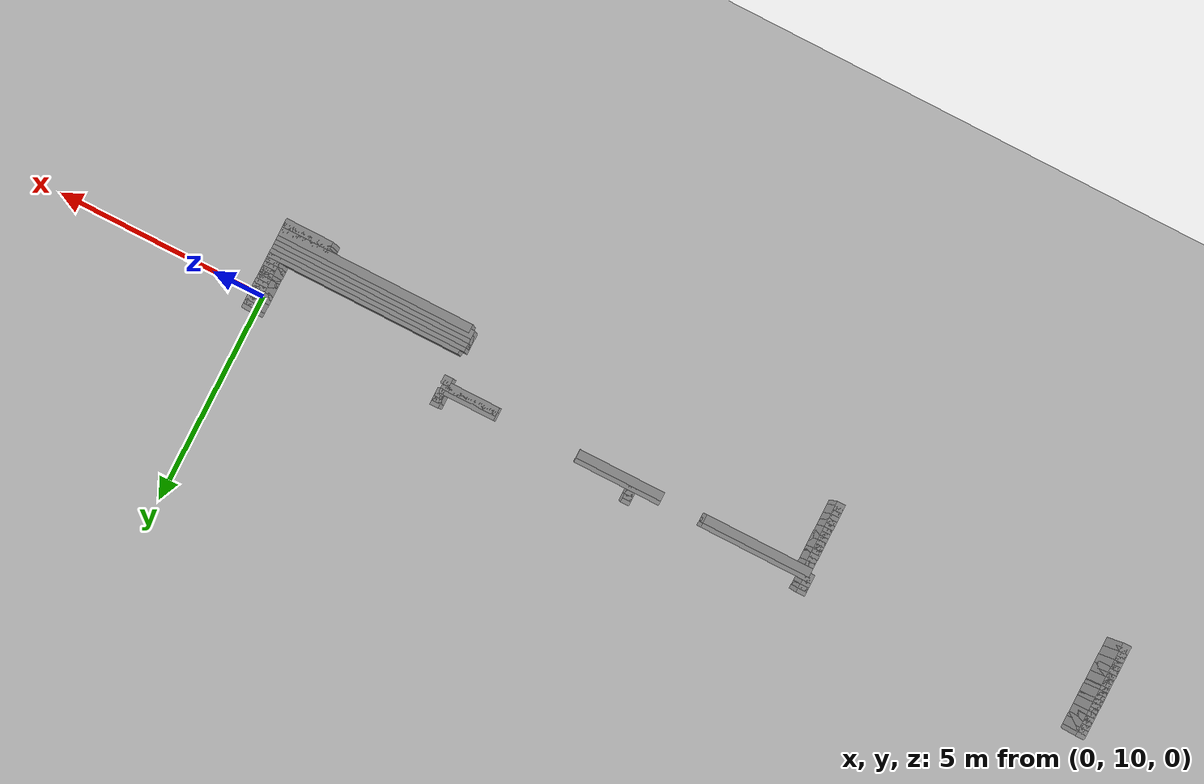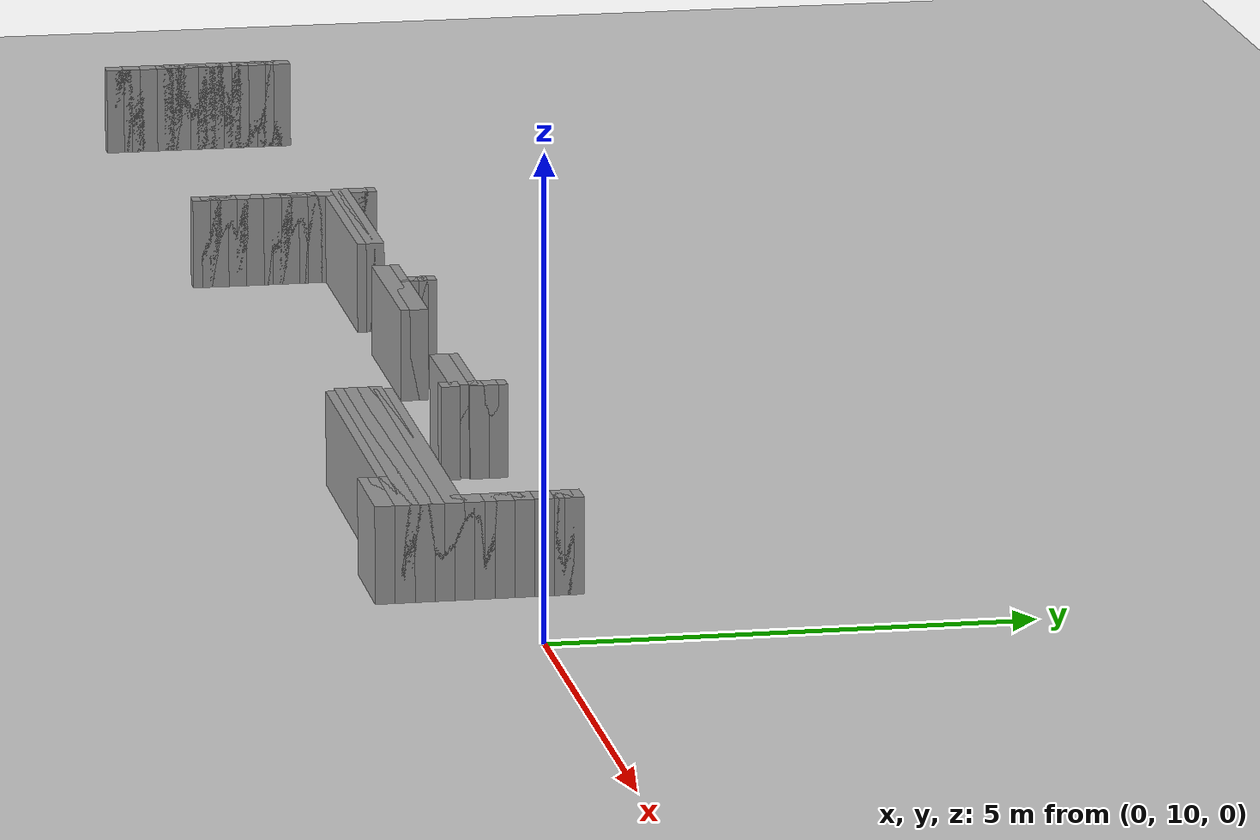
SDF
<sdf version="1.6">
 <world name="GridMap">
  <include><uri>model://sun</uri></include>
  <include><uri>model://ground_plane</uri></include>
  <model name="GridMap">
   <link name="Wall_(198.0,83.0)">
    <collision name="Wall_(198.0,83.0)_Collision">
     <geometry><box><size>0.2 0.2 1.0</size></box></geometry>
     <pose>-19.8 8.3 0.5 0 -0 0</pose>
    </collision>
    <visual name="Wall_(198.0,83.0)_Visual">
     <geometry><box><size>0.2 0.2 1.0</size></box></geometry>
     <pose>-19.8 8.3 0.5 0 -0 0</pose>
     <material>
      <script><uri>file://media/materials/scripts/gazebo.material</uri><name>Gazebo/Grey</name></script>
      <ambient>1 1 1 1</ambient>
     </material>
     <meta><layer>0</layer></meta>
    </visual>
    <pose>0 0 0.5 0 -0 0</pose>
   </link>
   <link name="Wall_(5.5,84.0)">
    <collision name="Wall_(5.5,84.0)_Collision">
     <geometry><box><size>1.1 0.2 1.0</size></box></geometry>
     <pose>-0.55 8.4 0.5 0 -0 0</pose>
    </collision>
    <visual name="Wall_(5.5,84.0)_Visual">
     <geometry><box><size>1.1 0.2 1.0</size></box></geometry>
     <pose>-0.55 8.4 0.5 0 -0 0</pose>
     <material>
      <script><uri>file://media/materials/scripts/gazebo.material</uri><name>Gazebo/Grey</name></script>
      <ambient>1 1 1 1</ambient>
     </material>
     <meta><layer>0</layer></meta>
    </visual>
    <pose>0 0 0.5 0 -0 0</pose>
   </link>
   <link name="Wall_(131.0,84.0)">
    <collision name="Wall_(131.0,84.0)_Collision">
     <geometry><box><size>0.2 0.2 1.0</size></box></geometry>
     <pose>-13.100000000000001 8.4 0.5 0 -0 0</pose>
    </collision>
    <visual name="Wall_(131.0,84.0)_Visual">
     <geometry><box><size>0.2 0.2 1.0</size></box></geometry>
     <pose>-13.100000000000001 8.4 0.5 0 -0 0</pose>
     <material>
      <script><uri>file://media/materials/scripts/gazebo.material</uri><name>Gazebo/Grey</name></script>
      <ambient>1 1 1 1</ambient>
     </material>
     <meta><layer>0</layer></meta>
    </visual>
    <pose>0 0 0.5 0 -0 0</pose>
   </link>
   <link name="Wall_(198.0,84.0)">
    <collision name="Wall_(198.0,84.0)_Collision">
     <geometry><box><size>0.2 0.2 1.0</size></box></geometry>
     <pose>-19.8 8.4 0.5 0 -0 0</pose>
    </collision>
    <visual name="Wall_(198.0,84.0)_Visual">
     <geometry><box><size>0.2 0.2 1.0</size></box></geometry>
     <pose>-19.8 8.4 0.5 0 -0 0</pose>
     <material>
      <script><uri>file://media/materials/scripts/gazebo.material</uri><name>Gazebo/Grey</name></script>
      <ambient>1 1 1 1</ambient>
     </material>
     <meta><layer>0</layer></meta>
    </visual>
    <pose>0 0 0.5 0 -0 0</pose>
   </link>
   <link name="Wall_(5.5,85.0)">
    <collision name="Wall_(5.5,85.0)_Collision">
     <geometry><box><size>1.1 0.2 1.0</size></box></geometry>
     <pose>-0.55 8.5 0.5 0 -0 0</pose>
    </collision>
    <visual name="Wall_(5.5,85.0)_Visual">
     <geometry><box><size>1.1 0.2 1.0</size></box></geometry>
     <pose>-0.55 8.5 0.5 0 -0 0</pose>
     <material>
      <script><uri>file://media/materials/scripts/gazebo.material</uri><name>Gazebo/Grey</name></script>
      <ambient>1 1 1 1</ambient>
     </material>
     <meta><layer>0</layer></meta>
    </visual>
    <pose>0 0 0.5 0 -0 0</pose>
   </link>
   <link name="Wall_(131.0,85.0)">
    <collision name="Wall_(131.0,85.0)_Collision">
     <geometry><box><size>0.2 0.2 1.0</size></box></geometry>
     <pose>-13.100000000000001 8.5 0.5 0 -0 0</pose>
    </collision>
    <visual name="Wall_(131.0,85.0)_Visual">
     <geometry><box><size>0.2 0.2 1.0</size></box></geometry>
     <pose>-13.100000000000001 8.5 0.5 0 -0 0</pose>
     <material>
      <script><uri>file://media/materials/scripts/gazebo.material</uri><name>Gazebo/Grey</name></script>
      <ambient>1 1 1 1</ambient>
     </material>
     <meta><layer>0</layer></meta>
    </visual>
    <pose>0 0 0.5 0 -0 0</pose>
   </link>
   <link name="Wall_(198.0,85.0)">
    <collision name="Wall_(198.0,85.0)_Collision">
     <geometry><box><size>0.2 0.2 1.0</size></box></geometry>
     <pose>-19.8 8.5 0.5 0 -0 0</pose>
    </collision>
    <visual name="Wall_(198.0,85.0)_Visual">
     <geometry><box><size>0.2 0.2 1.0</size></box></geometry>
     <pose>-19.8 8.5 0.5 0 -0 0</pose>
     <material>
      <script><uri>file://media/materials/scripts/gazebo.material</uri><name>Gazebo/Grey</name></script>
      <ambient>1 1 1 1</ambient>
     </material>
     <meta><layer>0</layer></meta>
    </visual>
    <pose>0 0 0.5 0 -0 0</pose>
   </link>
   <link name="Wall_(22.5,86.0)">
    <collision name="Wall_(22.5,86.0)_Collision">
     <geometry><box><size>4.5 0.2 1.0</size></box></geometry>
     <pose>-2.25 8.6 0.5 0 -0 0</pose>
    </collision>
    <visual name="Wall_(22.5,86.0)_Visual">
     <geometry><box><size>4.5 0.2 1.0</size></box></geometry>
     <pose>-2.25 8.6 0.5 0 -0 0</pose>
     <material>
      <script><uri>file://media/materials/scripts/gazebo.material</uri><name>Gazebo/Grey</name></script>
      <ambient>1 1 1 1</ambient>
     </material>
     <meta><layer>0</layer></meta>
    </visual>
    <pose>0 0 0.5 0 -0 0</pose>
   </link>
   <link name="Wall_(131.0,86.0)">
    <collision name="Wall_(131.0,86.0)_Collision">
     <geometry><box><size>0.2 0.2 1.0</size></box></geometry>
     <pose>-13.100000000000001 8.6 0.5 0 -0 0</pose>
    </collision>
    <visual name="Wall_(131.0,86.0)_Visual">
     <geometry><box><size>0.2 0.2 1.0</size></box></geometry>
     <pose>-13.100000000000001 8.6 0.5 0 -0 0</pose>
     <material>
      <script><uri>file://media/materials/scripts/gazebo.material</uri><name>Gazebo/Grey</name></script>
      <ambient>1 1 1 1</ambient>
     </material>
     <meta><layer>0</layer></meta>
    </visual>
    <pose>0 0 0.5 0 -0 0</pose>
   </link>
   <link name="Wall_(198.0,86.0)">
    <collision name="Wall_(198.0,86.0)_Collision">
     <geometry><box><size>0.2 0.2 1.0</size></box></geometry>
     <pose>-19.8 8.6 0.5 0 -0 0</pose>
    </collision>
    <visual name="Wall_(198.0,86.0)_Visual">
     <geometry><box><size>0.2 0.2 1.0</size></box></geometry>
     <pose>-19.8 8.6 0.5 0 -0 0</pose>
     <material>
      <script><uri>file://media/materials/scripts/gazebo.material</uri><name>Gazebo/Grey</name></script>
      <ambient>1 1 1 1</ambient>
     </material>
     <meta><layer>0</layer></meta>
    </visual>
    <pose>0 0 0.5 0 -0 0</pose>
   </link>
   <link name="Wall_(23.0,87.0)">
    <collision name="Wall_(23.0,87.0)_Collision">
     <geometry><box><size>4.6000000000000005 0.2 1.0</size></box></geometry>
     <pose>-2.3000000000000003 8.700000000000001 0.5 0 -0 0</pose>
    </collision>
    <visual name="Wall_(23.0,87.0)_Visual">
     <geometry><box><size>4.6000000000000005 0.2 1.0</size></box></geometry>
     <pose>-2.3000000000000003 8.700000000000001 0.5 0 -0 0</pose>
     <material>
      <script><uri>file://media/materials/scripts/gazebo.material</uri><name>Gazebo/Grey</name></script>
      <ambient>1 1 1 1</ambient>
     </material>
     <meta><layer>0</layer></meta>
    </visual>
    <pose>0 0 0.5 0 -0 0</pose>
   </link>
   <link name="Wall_(131.0,87.0)">
    <collision name="Wall_(131.0,87.0)_Collision">
     <geometry><box><size>0.2 0.2 1.0</size></box></geometry>
     <pose>-13.100000000000001 8.700000000000001 0.5 0 -0 0</pose>
    </collision>
    <visual name="Wall_(131.0,87.0)_Visual">
     <geometry><box><size>0.2 0.2 1.0</size></box></geometry>
     <pose>-13.100000000000001 8.700000000000001 0.5 0 -0 0</pose>
     <material>
      <script><uri>file://media/materials/scripts/gazebo.material</uri><name>Gazebo/Grey</name></script>
      <ambient>1 1 1 1</ambient>
     </material>
     <meta><layer>0</layer></meta>
    </visual>
    <pose>0 0 0.5 0 -0 0</pose>
   </link>
   <link name="Wall_(198.0,87.0)">
    <collision name="Wall_(198.0,87.0)_Collision">
     <geometry><box><size>0.2 0.2 1.0</size></box></geometry>
     <pose>-19.8 8.700000000000001 0.5 0 -0 0</pose>
    </collision>
    <visual name="Wall_(198.0,87.0)_Visual">
     <geometry><box><size>0.2 0.2 1.0</size></box></geometry>
     <pose>-19.8 8.700000000000001 0.5 0 -0 0</pose>
     <material>
      <script><uri>file://media/materials/scripts/gazebo.material</uri><name>Gazebo/Grey</name></script>
      <ambient>1 1 1 1</ambient>
     </material>
     <meta><layer>0</layer></meta>
    </visual>
    <pose>0 0 0.5 0 -0 0</pose>
   </link>
   <link name="Wall_(23.0,88.0)">
    <collision name="Wall_(23.0,88.0)_Collision">
     <geometry><box><size>4.6000000000000005 0.2 1.0</size></box></geometry>
     <pose>-2.3000000000000003 8.8 0.5 0 -0 0</pose>
    </collision>
    <visual name="Wall_(23.0,88.0)_Visual">
     <geometry><box><size>4.6000000000000005 0.2 1.0</size></box></geometry>
     <pose>-2.3000000000000003 8.8 0.5 0 -0 0</pose>
     <material>
      <script><uri>file://media/materials/scripts/gazebo.material</uri><name>Gazebo/Grey</name></script>
      <ambient>1 1 1 1</ambient>
     </material>
     <meta><layer>0</layer></meta>
    </visual>
    <pose>0 0 0.5 0 -0 0</pose>
   </link>
   <link name="Wall_(131.0,88.0)">
    <collision name="Wall_(131.0,88.0)_Collision">
     <geometry><box><size>0.2 0.2 1.0</size></box></geometry>
     <pose>-13.100000000000001 8.8 0.5 0 -0 0</pose>
    </collision>
    <visual name="Wall_(131.0,88.0)_Visual">
     <geometry><box><size>0.2 0.2 1.0</size></box></geometry>
     <pose>-13.100000000000001 8.8 0.5 0 -0 0</pose>
     <material>
      <script><uri>file://media/materials/scripts/gazebo.material</uri><name>Gazebo/Grey</name></script>
      <ambient>1 1 1 1</ambient>
     </material>
     <meta><layer>0</layer></meta>
    </visual>
    <pose>0 0 0.5 0 -0 0</pose>
   </link>
   <link name="Wall_(198.0,88.0)">
    <collision name="Wall_(198.0,88.0)_Collision">
     <geometry><box><size>0.2 0.2 1.0</size></box></geometry>
     <pose>-19.8 8.8 0.5 0 -0 0</pose>
    </collision>
    <visual name="Wall_(198.0,88.0)_Visual">
     <geometry><box><size>0.2 0.2 1.0</size></box></geometry>
     <pose>-19.8 8.8 0.5 0 -0 0</pose>
     <material>
      <script><uri>file://media/materials/scripts/gazebo.material</uri><name>Gazebo/Grey</name></script>
      <ambient>1 1 1 1</ambient>
     </material>
     <meta><layer>0</layer></meta>
    </visual>
    <pose>0 0 0.5 0 -0 0</pose>
   </link>
   <link name="Wall_(23.0,89.0)">
    <collision name="Wall_(23.0,89.0)_Collision">
     <geometry><box><size>4.6000000000000005 0.2 1.0</size></box></geometry>
     <pose>-2.3000000000000003 8.9 0.5 0 -0 0</pose>
    </collision>
    <visual name="Wall_(23.0,89.0)_Visual">
     <geometry><box><size>4.6000000000000005 0.2 1.0</size></box></geometry>
     <pose>-2.3000000000000003 8.9 0.5 0 -0 0</pose>
     <material>
      <script><uri>file://media/materials/scripts/gazebo.material</uri><name>Gazebo/Grey</name></script>
      <ambient>1 1 1 1</ambient>
     </material>
     <meta><layer>0</layer></meta>
    </visual>
    <pose>0 0 0.5 0 -0 0</pose>
   </link>
   <link name="Wall_(131.0,89.0)">
    <collision name="Wall_(131.0,89.0)_Collision">
     <geometry><box><size>0.2 0.2 1.0</size></box></geometry>
     <pose>-13.100000000000001 8.9 0.5 0 -0 0</pose>
    </collision>
    <visual name="Wall_(131.0,89.0)_Visual">
     <geometry><box><size>0.2 0.2 1.0</size></box></geometry>
     <pose>-13.100000000000001 8.9 0.5 0 -0 0</pose>
     <material>
      <script><uri>file://media/materials/scripts/gazebo.material</uri><name>Gazebo/Grey</name></script>
      <ambient>1 1 1 1</ambient>
     </material>
     <meta><layer>0</layer></meta>
    </visual>
    <pose>0 0 0.5 0 -0 0</pose>
   </link>
   <link name="Wall_(198.0,89.0)">
    <collision name="Wall_(198.0,89.0)_Collision">
     <geometry><box><size>0.2 0.2 1.0</size></box></geometry>
     <pose>-19.8 8.9 0.5 0 -0 0</pose>
    </collision>
    <visual name="Wall_(198.0,89.0)_Visual">
     <geometry><box><size>0.2 0.2 1.0</size></box></geometry>
     <pose>-19.8 8.9 0.5 0 -0 0</pose>
     <material>
      <script><uri>file://media/materials/scripts/gazebo.material</uri><name>Gazebo/Grey</name></script>
      <ambient>1 1 1 1</ambient>
     </material>
     <meta><layer>0</layer></meta>
    </visual>
    <pose>0 0 0.5 0 -0 0</pose>
   </link>
   <link name="Wall_(23.0,90.0)">
    <collision name="Wall_(23.0,90.0)_Collision">
     <geometry><box><size>4.6000000000000005 0.2 1.0</size></box></geometry>
     <pose>-2.3000000000000003 9.0 0.5 0 -0 0</pose>
    </collision>
    <visual name="Wall_(23.0,90.0)_Visual">
     <geometry><box><size>4.6000000000000005 0.2 1.0</size></box></geometry>
     <pose>-2.3000000000000003 9.0 0.5 0 -0 0</pose>
     <material>
      <script><uri>file://media/materials/scripts/gazebo.material</uri><name>Gazebo/Grey</name></script>
      <ambient>1 1 1 1</ambient>
     </material>
     <meta><layer>0</layer></meta>
    </visual>
    <pose>0 0 0.5 0 -0 0</pose>
   </link>
   <link name="Wall_(131.0,90.0)">
    <collision name="Wall_(131.0,90.0)_Collision">
     <geometry><box><size>0.2 0.2 1.0</size></box></geometry>
     <pose>-13.100000000000001 9.0 0.5 0 -0 0</pose>
    </collision>
    <visual name="Wall_(131.0,90.0)_Visual">
     <geometry><box><size>0.2 0.2 1.0</size></box></geometry>
     <pose>-13.100000000000001 9.0 0.5 0 -0 0</pose>
     <material>
      <script><uri>file://media/materials/scripts/gazebo.material</uri><name>Gazebo/Grey</name></script>
      <ambient>1 1 1 1</ambient>
     </material>
     <meta><layer>0</layer></meta>
    </visual>
    <pose>0 0 0.5 0 -0 0</pose>
   </link>
   <link name="Wall_(198.0,90.0)">
    <collision name="Wall_(198.0,90.0)_Collision">
     <geometry><box><size>0.2 0.2 1.0</size></box></geometry>
     <pose>-19.8 9.0 0.5 0 -0 0</pose>
    </collision>
    <visual name="Wall_(198.0,90.0)_Visual">
     <geometry><box><size>0.2 0.2 1.0</size></box></geometry>
     <pose>-19.8 9.0 0.5 0 -0 0</pose>
     <material>
      <script><uri>file://media/materials/scripts/gazebo.material</uri><name>Gazebo/Grey</name></script>
      <ambient>1 1 1 1</ambient>
     </material>
     <meta><layer>0</layer></meta>
    </visual>
    <pose>0 0 0.5 0 -0 0</pose>
   </link>
   <link name="Wall_(22.5,91.0)">
    <collision name="Wall_(22.5,91.0)_Collision">
     <geometry><box><size>4.5 0.2 1.0</size></box></geometry>
     <pose>-2.25 9.1 0.5 0 -0 0</pose>
    </collision>
    <visual name="Wall_(22.5,91.0)_Visual">
     <geometry><box><size>4.5 0.2 1.0</size></box></geometry>
     <pose>-2.25 9.1 0.5 0 -0 0</pose>
     <material>
      <script><uri>file://media/materials/scripts/gazebo.material</uri><name>Gazebo/Grey</name></script>
      <ambient>1 1 1 1</ambient>
     </material>
     <meta><layer>0</layer></meta>
    </visual>
    <pose>0 0 0.5 0 -0 0</pose>
   </link>
   <link name="Wall_(131.0,91.0)">
    <collision name="Wall_(131.0,91.0)_Collision">
     <geometry><box><size>0.2 0.2 1.0</size></box></geometry>
     <pose>-13.100000000000001 9.1 0.5 0 -0 0</pose>
    </collision>
    <visual name="Wall_(131.0,91.0)_Visual">
     <geometry><box><size>0.2 0.2 1.0</size></box></geometry>
     <pose>-13.100000000000001 9.1 0.5 0 -0 0</pose>
     <material>
      <script><uri>file://media/materials/scripts/gazebo.material</uri><name>Gazebo/Grey</name></script>
      <ambient>1 1 1 1</ambient>
     </material>
     <meta><layer>0</layer></meta>
    </visual>
    <pose>0 0 0.5 0 -0 0</pose>
   </link>
   <link name="Wall_(198.0,91.0)">
    <collision name="Wall_(198.0,91.0)_Collision">
     <geometry><box><size>0.2 0.2 1.0</size></box></geometry>
     <pose>-19.8 9.1 0.5 0 -0 0</pose>
    </collision>
    <visual name="Wall_(198.0,91.0)_Visual">
     <geometry><box><size>0.2 0.2 1.0</size></box></geometry>
     <pose>-19.8 9.1 0.5 0 -0 0</pose>
     <material>
      <script><uri>file://media/materials/scripts/gazebo.material</uri><name>Gazebo/Grey</name></script>
      <ambient>1 1 1 1</ambient>
     </material>
     <meta><layer>0</layer></meta>
    </visual>
    <pose>0 0 0.5 0 -0 0</pose>
   </link>
   <link name="Wall_(1.5,92.0)">
    <collision name="Wall_(1.5,92.0)_Collision">
     <geometry><box><size>0.30000000000000004 0.2 1.0</size></box></geometry>
     <pose>-0.15000000000000002 9.200000000000001 0.5 0 -0 0</pose>
    </collision>
    <visual name="Wall_(1.5,92.0)_Visual">
     <geometry><box><size>0.30000000000000004 0.2 1.0</size></box></geometry>
     <pose>-0.15000000000000002 9.200000000000001 0.5 0 -0 0</pose>
     <material>
      <script><uri>file://media/materials/scripts/gazebo.material</uri><name>Gazebo/Grey</name></script>
      <ambient>1 1 1 1</ambient>
     </material>
     <meta><layer>0</layer></meta>
    </visual>
    <pose>0 0 0.5 0 -0 0</pose>
   </link>
   <link name="Wall_(131.0,92.0)">
    <collision name="Wall_(131.0,92.0)_Collision">
     <geometry><box><size>0.2 0.2 1.0</size></box></geometry>
     <pose>-13.100000000000001 9.200000000000001 0.5 0 -0 0</pose>
    </collision>
    <visual name="Wall_(131.0,92.0)_Visual">
     <geometry><box><size>0.2 0.2 1.0</size></box></geometry>
     <pose>-13.100000000000001 9.200000000000001 0.5 0 -0 0</pose>
     <material>
      <script><uri>file://media/materials/scripts/gazebo.material</uri><name>Gazebo/Grey</name></script>
      <ambient>1 1 1 1</ambient>
     </material>
     <meta><layer>0</layer></meta>
    </visual>
    <pose>0 0 0.5 0 -0 0</pose>
   </link>
   <link name="Wall_(198.0,92.0)">
    <collision name="Wall_(198.0,92.0)_Collision">
     <geometry><box><size>0.2 0.2 1.0</size></box></geometry>
     <pose>-19.8 9.200000000000001 0.5 0 -0 0</pose>
    </collision>
    <visual name="Wall_(198.0,92.0)_Visual">
     <geometry><box><size>0.2 0.2 1.0</size></box></geometry>
     <pose>-19.8 9.200000000000001 0.5 0 -0 0</pose>
     <material>
      <script><uri>file://media/materials/scripts/gazebo.material</uri><name>Gazebo/Grey</name></script>
      <ambient>1 1 1 1</ambient>
     </material>
     <meta><layer>0</layer></meta>
    </visual>
    <pose>0 0 0.5 0 -0 0</pose>
   </link>
   <link name="Wall_(1.5,93.0)">
    <collision name="Wall_(1.5,93.0)_Collision">
     <geometry><box><size>0.30000000000000004 0.2 1.0</size></box></geometry>
     <pose>-0.15000000000000002 9.3 0.5 0 -0 0</pose>
    </collision>
    <visual name="Wall_(1.5,93.0)_Visual">
     <geometry><box><size>0.30000000000000004 0.2 1.0</size></box></geometry>
     <pose>-0.15000000000000002 9.3 0.5 0 -0 0</pose>
     <material>
      <script><uri>file://media/materials/scripts/gazebo.material</uri><name>Gazebo/Grey</name></script>
      <ambient>1 1 1 1</ambient>
     </material>
     <meta><layer>0</layer></meta>
    </visual>
    <pose>0 0 0.5 0 -0 0</pose>
   </link>
   <link name="Wall_(131.0,93.0)">
    <collision name="Wall_(131.0,93.0)_Collision">
     <geometry><box><size>0.2 0.2 1.0</size></box></geometry>
     <pose>-13.100000000000001 9.3 0.5 0 -0 0</pose>
    </collision>
    <visual name="Wall_(131.0,93.0)_Visual">
     <geometry><box><size>0.2 0.2 1.0</size></box></geometry>
     <pose>-13.100000000000001 9.3 0.5 0 -0 0</pose>
     <material>
      <script><uri>file://media/materials/scripts/gazebo.material</uri><name>Gazebo/Grey</name></script>
      <ambient>1 1 1 1</ambient>
     </material>
     <meta><layer>0</layer></meta>
    </visual>
    <pose>0 0 0.5 0 -0 0</pose>
   </link>
   <link name="Wall_(198.0,93.0)">
    <collision name="Wall_(198.0,93.0)_Collision">
     <geometry><box><size>0.2 0.2 1.0</size></box></geometry>
     <pose>-19.8 9.3 0.5 0 -0 0</pose>
    </collision>
    <visual name="Wall_(198.0,93.0)_Visual">
     <geometry><box><size>0.2 0.2 1.0</size></box></geometry>
     <pose>-19.8 9.3 0.5 0 -0 0</pose>
     <material>
      <script><uri>file://media/materials/scripts/gazebo.material</uri><name>Gazebo/Grey</name></script>
      <ambient>1 1 1 1</ambient>
     </material>
     <meta><layer>0</layer></meta>
    </visual>
    <pose>0 0 0.5 0 -0 0</pose>
   </link>
   <link name="Wall_(1.5,94.0)">
    <collision name="Wall_(1.5,94.0)_Collision">
     <geometry><box><size>0.30000000000000004 0.2 1.0</size></box></geometry>
     <pose>-0.15000000000000002 9.4 0.5 0 -0 0</pose>
    </collision>
    <visual name="Wall_(1.5,94.0)_Visual">
     <geometry><box><size>0.30000000000000004 0.2 1.0</size></box></geometry>
     <pose>-0.15000000000000002 9.4 0.5 0 -0 0</pose>
     <material>
      <script><uri>file://media/materials/scripts/gazebo.material</uri><name>Gazebo/Grey</name></script>
      <ambient>1 1 1 1</ambient>
     </material>
     <meta><layer>0</layer></meta>
    </visual>
    <pose>0 0 0.5 0 -0 0</pose>
   </link>
   <link name="Wall_(131.0,94.0)">
    <collision name="Wall_(131.0,94.0)_Collision">
     <geometry><box><size>0.2 0.2 1.0</size></box></geometry>
     <pose>-13.100000000000001 9.4 0.5 0 -0 0</pose>
    </collision>
    <visual name="Wall_(131.0,94.0)_Visual">
     <geometry><box><size>0.2 0.2 1.0</size></box></geometry>
     <pose>-13.100000000000001 9.4 0.5 0 -0 0</pose>
     <material>
      <script><uri>file://media/materials/scripts/gazebo.material</uri><name>Gazebo/Grey</name></script>
      <ambient>1 1 1 1</ambient>
     </material>
     <meta><layer>0</layer></meta>
    </visual>
    <pose>0 0 0.5 0 -0 0</pose>
   </link>
   <link name="Wall_(198.0,94.0)">
    <collision name="Wall_(198.0,94.0)_Collision">
     <geometry><box><size>0.2 0.2 1.0</size></box></geometry>
     <pose>-19.8 9.4 0.5 0 -0 0</pose>
    </collision>
    <visual name="Wall_(198.0,94.0)_Visual">
     <geometry><box><size>0.2 0.2 1.0</size></box></geometry>
     <pose>-19.8 9.4 0.5 0 -0 0</pose>
     <material>
      <script><uri>file://media/materials/scripts/gazebo.material</uri><name>Gazebo/Grey</name></script>
      <ambient>1 1 1 1</ambient>
     </material>
     <meta><layer>0</layer></meta>
    </visual>
    <pose>0 0 0.5 0 -0 0</pose>
   </link>
   <link name="Wall_(1.5,95.0)">
    <collision name="Wall_(1.5,95.0)_Collision">
     <geometry><box><size>0.30000000000000004 0.2 1.0</size></box></geometry>
     <pose>-0.15000000000000002 9.5 0.5 0 -0 0</pose>
    </collision>
    <visual name="Wall_(1.5,95.0)_Visual">
     <geometry><box><size>0.30000000000000004 0.2 1.0</size></box></geometry>
     <pose>-0.15000000000000002 9.5 0.5 0 -0 0</pose>
     <material>
      <script><uri>file://media/materials/scripts/gazebo.material</uri><name>Gazebo/Grey</name></script>
      <ambient>1 1 1 1</ambient>
     </material>
     <meta><layer>0</layer></meta>
    </visual>
    <pose>0 0 0.5 0 -0 0</pose>
   </link>
   <link name="Wall_(131.0,95.0)">
    <collision name="Wall_(131.0,95.0)_Collision">
     <geometry><box><size>0.2 0.2 1.0</size></box></geometry>
     <pose>-13.100000000000001 9.5 0.5 0 -0 0</pose>
    </collision>
    <visual name="Wall_(131.0,95.0)_Visual">
     <geometry><box><size>0.2 0.2 1.0</size></box></geometry>
     <pose>-13.100000000000001 9.5 0.5 0 -0 0</pose>
     <material>
      <script><uri>file://media/materials/scripts/gazebo.material</uri><name>Gazebo/Grey</name></script>
      <ambient>1 1 1 1</ambient>
     </material>
     <meta><layer>0</layer></meta>
    </visual>
    <pose>0 0 0.5 0 -0 0</pose>
   </link>
   <link name="Wall_(198.0,95.0)">
    <collision name="Wall_(198.0,95.0)_Collision">
     <geometry><box><size>0.2 0.2 1.0</size></box></geometry>
     <pose>-19.8 9.5 0.5 0 -0 0</pose>
    </collision>
    <visual name="Wall_(198.0,95.0)_Visual">
     <geometry><box><size>0.2 0.2 1.0</size></box></geometry>
     <pose>-19.8 9.5 0.5 0 -0 0</pose>
     <material>
      <script><uri>file://media/materials/scripts/gazebo.material</uri><name>Gazebo/Grey</name></script>
      <ambient>1 1 1 1</ambient>
     </material>
     <meta><layer>0</layer></meta>
    </visual>
    <pose>0 0 0.5 0 -0 0</pose>
   </link>
   <link name="Wall_(1.5,96.0)">
    <collision name="Wall_(1.5,96.0)_Collision">
     <geometry><box><size>0.30000000000000004 0.2 1.0</size></box></geometry>
     <pose>-0.15000000000000002 9.600000000000001 0.5 0 -0 0</pose>
    </collision>
    <visual name="Wall_(1.5,96.0)_Visual">
     <geometry><box><size>0.30000000000000004 0.2 1.0</size></box></geometry>
     <pose>-0.15000000000000002 9.600000000000001 0.5 0 -0 0</pose>
     <material>
      <script><uri>file://media/materials/scripts/gazebo.material</uri><name>Gazebo/Grey</name></script>
      <ambient>1 1 1 1</ambient>
     </material>
     <meta><layer>0</layer></meta>
    </visual>
    <pose>0 0 0.5 0 -0 0</pose>
   </link>
   <link name="Wall_(131.0,96.0)">
    <collision name="Wall_(131.0,96.0)_Collision">
     <geometry><box><size>0.2 0.2 1.0</size></box></geometry>
     <pose>-13.100000000000001 9.600000000000001 0.5 0 -0 0</pose>
    </collision>
    <visual name="Wall_(131.0,96.0)_Visual">
     <geometry><box><size>0.2 0.2 1.0</size></box></geometry>
     <pose>-13.100000000000001 9.600000000000001 0.5 0 -0 0</pose>
     <material>
      <script><uri>file://media/materials/scripts/gazebo.material</uri><name>Gazebo/Grey</name></script>
      <ambient>1 1 1 1</ambient>
     </material>
     <meta><layer>0</layer></meta>
    </visual>
    <pose>0 0 0.5 0 -0 0</pose>
   </link>
   <link name="Wall_(198.0,96.0)">
    <collision name="Wall_(198.0,96.0)_Collision">
     <geometry><box><size>0.2 0.2 1.0</size></box></geometry>
     <pose>-19.8 9.600000000000001 0.5 0 -0 0</pose>
    </collision>
    <visual name="Wall_(198.0,96.0)_Visual">
     <geometry><box><size>0.2 0.2 1.0</size></box></geometry>
     <pose>-19.8 9.600000000000001 0.5 0 -0 0</pose>
     <material>
      <script><uri>file://media/materials/scripts/gazebo.material</uri><name>Gazebo/Grey</name></script>
      <ambient>1 1 1 1</ambient>
     </material>
     <meta><layer>0</layer></meta>
    </visual>
    <pose>0 0 0.5 0 -0 0</pose>
   </link>
   <link name="Wall_(1.5,97.0)">
    <collision name="Wall_(1.5,97.0)_Collision">
     <geometry><box><size>0.30000000000000004 0.2 1.0</size></box></geometry>
     <pose>-0.15000000000000002 9.700000000000001 0.5 0 -0 0</pose>
    </collision>
    <visual name="Wall_(1.5,97.0)_Visual">
     <geometry><box><size>0.30000000000000004 0.2 1.0</size></box></geometry>
     <pose>-0.15000000000000002 9.700000000000001 0.5 0 -0 0</pose>
     <material>
      <script><uri>file://media/materials/scripts/gazebo.material</uri><name>Gazebo/Grey</name></script>
      <ambient>1 1 1 1</ambient>
     </material>
     <meta><layer>0</layer></meta>
    </visual>
    <pose>0 0 0.5 0 -0 0</pose>
   </link>
   <link name="Wall_(131.0,97.0)">
    <collision name="Wall_(131.0,97.0)_Collision">
     <geometry><box><size>0.2 0.2 1.0</size></box></geometry>
     <pose>-13.100000000000001 9.700000000000001 0.5 0 -0 0</pose>
    </collision>
    <visual name="Wall_(131.0,97.0)_Visual">
     <geometry><box><size>0.2 0.2 1.0</size></box></geometry>
     <pose>-13.100000000000001 9.700000000000001 0.5 0 -0 0</pose>
     <material>
      <script><uri>file://media/materials/scripts/gazebo.material</uri><name>Gazebo/Grey</name></script>
      <ambient>1 1 1 1</ambient>
     </material>
     <meta><layer>0</layer></meta>
    </visual>
    <pose>0 0 0.5 0 -0 0</pose>
   </link>
   <link name="Wall_(198.0,97.0)">
    <collision name="Wall_(198.0,97.0)_Collision">
     <geometry><box><size>0.2 0.2 1.0</size></box></geometry>
     <pose>-19.8 9.700000000000001 0.5 0 -0 0</pose>
    </collision>
    <visual name="Wall_(198.0,97.0)_Visual">
     <geometry><box><size>0.2 0.2 1.0</size></box></geometry>
     <pose>-19.8 9.700000000000001 0.5 0 -0 0</pose>
     <material>
      <script><uri>file://media/materials/scripts/gazebo.material</uri><name>Gazebo/Grey</name></script>
      <ambient>1 1 1 1</ambient>
     </material>
     <meta><layer>0</layer></meta>
    </visual>
    <pose>0 0 0.5 0 -0 0</pose>
   </link>
   <link name="Wall_(1.5,98.0)">
    <collision name="Wall_(1.5,98.0)_Collision">
     <geometry><box><size>0.30000000000000004 0.2 1.0</size></box></geometry>
     <pose>-0.15000000000000002 9.8 0.5 0 -0 0</pose>
    </collision>
    <visual name="Wall_(1.5,98.0)_Visual">
     <geometry><box><size>0.30000000000000004 0.2 1.0</size></box></geometry>
     <pose>-0.15000000000000002 9.8 0.5 0 -0 0</pose>
     <material>
      <script><uri>file://media/materials/scripts/gazebo.material</uri><name>Gazebo/Grey</name></script>
      <ambient>1 1 1 1</ambient>
     </material>
     <meta><layer>0</layer></meta>
    </visual>
    <pose>0 0 0.5 0 -0 0</pose>
   </link>
   <link name="Wall_(45.5,98.0)">
    <collision name="Wall_(45.5,98.0)_Collision">
     <geometry><box><size>0.2 0.2 1.0</size></box></geometry>
     <pose>-4.55 9.8 0.5 0 -0 0</pose>
    </collision>
    <visual name="Wall_(45.5,98.0)_Visual">
     <geometry><box><size>0.2 0.2 1.0</size></box></geometry>
     <pose>-4.55 9.8 0.5 0 -0 0</pose>
     <material>
      <script><uri>file://media/materials/scripts/gazebo.material</uri><name>Gazebo/Grey</name></script>
      <ambient>1 1 1 1</ambient>
     </material>
     <meta><layer>0</layer></meta>
    </visual>
    <pose>0 0 0.5 0 -0 0</pose>
   </link>
   <link name="Wall_(131.0,98.0)">
    <collision name="Wall_(131.0,98.0)_Collision">
     <geometry><box><size>0.2 0.2 1.0</size></box></geometry>
     <pose>-13.100000000000001 9.8 0.5 0 -0 0</pose>
    </collision>
    <visual name="Wall_(131.0,98.0)_Visual">
     <geometry><box><size>0.2 0.2 1.0</size></box></geometry>
     <pose>-13.100000000000001 9.8 0.5 0 -0 0</pose>
     <material>
      <script><uri>file://media/materials/scripts/gazebo.material</uri><name>Gazebo/Grey</name></script>
      <ambient>1 1 1 1</ambient>
     </material>
     <meta><layer>0</layer></meta>
    </visual>
    <pose>0 0 0.5 0 -0 0</pose>
   </link>
   <link name="Wall_(198.0,98.0)">
    <collision name="Wall_(198.0,98.0)_Collision">
     <geometry><box><size>0.2 0.2 1.0</size></box></geometry>
     <pose>-19.8 9.8 0.5 0 -0 0</pose>
    </collision>
    <visual name="Wall_(198.0,98.0)_Visual">
     <geometry><box><size>0.2 0.2 1.0</size></box></geometry>
     <pose>-19.8 9.8 0.5 0 -0 0</pose>
     <material>
      <script><uri>file://media/materials/scripts/gazebo.material</uri><name>Gazebo/Grey</name></script>
      <ambient>1 1 1 1</ambient>
     </material>
     <meta><layer>0</layer></meta>
    </visual>
    <pose>0 0 0.5 0 -0 0</pose>
   </link>
   <link name="Wall_(1.5,99.0)">
    <collision name="Wall_(1.5,99.0)_Collision">
     <geometry><box><size>0.30000000000000004 0.2 1.0</size></box></geometry>
     <pose>-0.15000000000000002 9.9 0.5 0 -0 0</pose>
    </collision>
    <visual name="Wall_(1.5,99.0)_Visual">
     <geometry><box><size>0.30000000000000004 0.2 1.0</size></box></geometry>
     <pose>-0.15000000000000002 9.9 0.5 0 -0 0</pose>
     <material>
      <script><uri>file://media/materials/scripts/gazebo.material</uri><name>Gazebo/Grey</name></script>
      <ambient>1 1 1 1</ambient>
     </material>
     <meta><layer>0</layer></meta>
    </visual>
    <pose>0 0 0.5 0 -0 0</pose>
   </link>
   <link name="Wall_(51.5,99.0)">
    <collision name="Wall_(51.5,99.0)_Collision">
     <geometry><box><size>1.3 0.2 1.0</size></box></geometry>
     <pose>-5.15 9.9 0.5 0 -0 0</pose>
    </collision>
    <visual name="Wall_(51.5,99.0)_Visual">
     <geometry><box><size>1.3 0.2 1.0</size></box></geometry>
     <pose>-5.15 9.9 0.5 0 -0 0</pose>
     <material>
      <script><uri>file://media/materials/scripts/gazebo.material</uri><name>Gazebo/Grey</name></script>
      <ambient>1 1 1 1</ambient>
     </material>
     <meta><layer>0</layer></meta>
    </visual>
    <pose>0 0 0.5 0 -0 0</pose>
   </link>
   <link name="Wall_(87.0,99.0)">
    <collision name="Wall_(87.0,99.0)_Collision">
     <geometry><box><size>2.0 0.2 1.0</size></box></geometry>
     <pose>-8.700000000000001 9.9 0.5 0 -0 0</pose>
    </collision>
    <visual name="Wall_(87.0,99.0)_Visual">
     <geometry><box><size>2.0 0.2 1.0</size></box></geometry>
     <pose>-8.700000000000001 9.9 0.5 0 -0 0</pose>
     <material>
      <script><uri>file://media/materials/scripts/gazebo.material</uri><name>Gazebo/Grey</name></script>
      <ambient>1 1 1 1</ambient>
     </material>
     <meta><layer>0</layer></meta>
    </visual>
    <pose>0 0 0.5 0 -0 0</pose>
   </link>
   <link name="Wall_(119.5,99.0)">
    <collision name="Wall_(119.5,99.0)_Collision">
     <geometry><box><size>2.5 0.2 1.0</size></box></geometry>
     <pose>-11.950000000000001 9.9 0.5 0 -0 0</pose>
    </collision>
    <visual name="Wall_(119.5,99.0)_Visual">
     <geometry><box><size>2.5 0.2 1.0</size></box></geometry>
     <pose>-11.950000000000001 9.9 0.5 0 -0 0</pose>
     <material>
      <script><uri>file://media/materials/scripts/gazebo.material</uri><name>Gazebo/Grey</name></script>
      <ambient>1 1 1 1</ambient>
     </material>
     <meta><layer>0</layer></meta>
    </visual>
    <pose>0 0 0.5 0 -0 0</pose>
   </link>
   <link name="Wall_(198.0,99.0)">
    <collision name="Wall_(198.0,99.0)_Collision">
     <geometry><box><size>0.2 0.2 1.0</size></box></geometry>
     <pose>-19.8 9.9 0.5 0 -0 0</pose>
    </collision>
    <visual name="Wall_(198.0,99.0)_Visual">
     <geometry><box><size>0.2 0.2 1.0</size></box></geometry>
     <pose>-19.8 9.9 0.5 0 -0 0</pose>
     <material>
      <script><uri>file://media/materials/scripts/gazebo.material</uri><name>Gazebo/Grey</name></script>
      <ambient>1 1 1 1</ambient>
     </material>
     <meta><layer>0</layer></meta>
    </visual>
    <pose>0 0 0.5 0 -0 0</pose>
   </link>
   <link name="Wall_(1.5,100.0)">
    <collision name="Wall_(1.5,100.0)_Collision">
     <geometry><box><size>0.30000000000000004 0.2 1.0</size></box></geometry>
     <pose>-0.15000000000000002 10.0 0.5 0 -0 0</pose>
    </collision>
    <visual name="Wall_(1.5,100.0)_Visual">
     <geometry><box><size>0.30000000000000004 0.2 1.0</size></box></geometry>
     <pose>-0.15000000000000002 10.0 0.5 0 -0 0</pose>
     <material>
      <script><uri>file://media/materials/scripts/gazebo.material</uri><name>Gazebo/Grey</name></script>
      <ambient>1 1 1 1</ambient>
     </material>
     <meta><layer>0</layer></meta>
    </visual>
    <pose>0 0 0.5 0 -0 0</pose>
   </link>
   <link name="Wall_(51.5,100.0)">
    <collision name="Wall_(51.5,100.0)_Collision">
     <geometry><box><size>1.3 0.2 1.0</size></box></geometry>
     <pose>-5.15 10.0 0.5 0 -0 0</pose>
    </collision>
    <visual name="Wall_(51.5,100.0)_Visual">
     <geometry><box><size>1.3 0.2 1.0</size></box></geometry>
     <pose>-5.15 10.0 0.5 0 -0 0</pose>
     <material>
      <script><uri>file://media/materials/scripts/gazebo.material</uri><name>Gazebo/Grey</name></script>
      <ambient>1 1 1 1</ambient>
     </material>
     <meta><layer>0</layer></meta>
    </visual>
    <pose>0 0 0.5 0 -0 0</pose>
   </link>
   <link name="Wall_(87.0,100.0)">
    <collision name="Wall_(87.0,100.0)_Collision">
     <geometry><box><size>2.0 0.2 1.0</size></box></geometry>
     <pose>-8.700000000000001 10.0 0.5 0 -0 0</pose>
    </collision>
    <visual name="Wall_(87.0,100.0)_Visual">
     <geometry><box><size>2.0 0.2 1.0</size></box></geometry>
     <pose>-8.700000000000001 10.0 0.5 0 -0 0</pose>
     <material>
      <script><uri>file://media/materials/scripts/gazebo.material</uri><name>Gazebo/Grey</name></script>
      <ambient>1 1 1 1</ambient>
     </material>
     <meta><layer>0</layer></meta>
    </visual>
    <pose>0 0 0.5 0 -0 0</pose>
   </link>
   <link name="Wall_(120.0,100.0)">
    <collision name="Wall_(120.0,100.0)_Collision">
     <geometry><box><size>2.6 0.2 1.0</size></box></geometry>
     <pose>-12.0 10.0 0.5 0 -0 0</pose>
    </collision>
    <visual name="Wall_(120.0,100.0)_Visual">
     <geometry><box><size>2.6 0.2 1.0</size></box></geometry>
     <pose>-12.0 10.0 0.5 0 -0 0</pose>
     <material>
      <script><uri>file://media/materials/scripts/gazebo.material</uri><name>Gazebo/Grey</name></script>
      <ambient>1 1 1 1</ambient>
     </material>
     <meta><layer>0</layer></meta>
    </visual>
    <pose>0 0 0.5 0 -0 0</pose>
   </link>
   <link name="Wall_(198.0,100.0)">
    <collision name="Wall_(198.0,100.0)_Collision">
     <geometry><box><size>0.2 0.2 1.0</size></box></geometry>
     <pose>-19.8 10.0 0.5 0 -0 0</pose>
    </collision>
    <visual name="Wall_(198.0,100.0)_Visual">
     <geometry><box><size>0.2 0.2 1.0</size></box></geometry>
     <pose>-19.8 10.0 0.5 0 -0 0</pose>
     <material>
      <script><uri>file://media/materials/scripts/gazebo.material</uri><name>Gazebo/Grey</name></script>
      <ambient>1 1 1 1</ambient>
     </material>
     <meta><layer>0</layer></meta>
    </visual>
    <pose>0 0 0.5 0 -0 0</pose>
   </link>
   <link name="Wall_(1.5,101.0)">
    <collision name="Wall_(1.5,101.0)_Collision">
     <geometry><box><size>0.30000000000000004 0.2 1.0</size></box></geometry>
     <pose>-0.15000000000000002 10.100000000000001 0.5 0 -0 0</pose>
    </collision>
    <visual name="Wall_(1.5,101.0)_Visual">
     <geometry><box><size>0.30000000000000004 0.2 1.0</size></box></geometry>
     <pose>-0.15000000000000002 10.100000000000001 0.5 0 -0 0</pose>
     <material>
      <script><uri>file://media/materials/scripts/gazebo.material</uri><name>Gazebo/Grey</name></script>
      <ambient>1 1 1 1</ambient>
     </material>
     <meta><layer>0</layer></meta>
    </visual>
    <pose>0 0 0.5 0 -0 0</pose>
   </link>
   <link name="Wall_(45.5,101.0)">
    <collision name="Wall_(45.5,101.0)_Collision">
     <geometry><box><size>0.2 0.2 1.0</size></box></geometry>
     <pose>-4.55 10.100000000000001 0.5 0 -0 0</pose>
    </collision>
    <visual name="Wall_(45.5,101.0)_Visual">
     <geometry><box><size>0.2 0.2 1.0</size></box></geometry>
     <pose>-4.55 10.100000000000001 0.5 0 -0 0</pose>
     <material>
      <script><uri>file://media/materials/scripts/gazebo.material</uri><name>Gazebo/Grey</name></script>
      <ambient>1 1 1 1</ambient>
     </material>
     <meta><layer>0</layer></meta>
    </visual>
    <pose>0 0 0.5 0 -0 0</pose>
   </link>
   <link name="Wall_(90.5,101.0)">
    <collision name="Wall_(90.5,101.0)_Collision">
     <geometry><box><size>0.2 0.2 1.0</size></box></geometry>
     <pose>-9.05 10.100000000000001 0.5 0 -0 0</pose>
    </collision>
    <visual name="Wall_(90.5,101.0)_Visual">
     <geometry><box><size>0.2 0.2 1.0</size></box></geometry>
     <pose>-9.05 10.100000000000001 0.5 0 -0 0</pose>
     <material>
      <script><uri>file://media/materials/scripts/gazebo.material</uri><name>Gazebo/Grey</name></script>
      <ambient>1 1 1 1</ambient>
     </material>
     <meta><layer>0</layer></meta>
    </visual>
    <pose>0 0 0.5 0 -0 0</pose>
   </link>
   <link name="Wall_(132.0,101.0)">
    <collision name="Wall_(132.0,101.0)_Collision">
     <geometry><box><size>0.2 0.2 1.0</size></box></geometry>
     <pose>-13.200000000000001 10.100000000000001 0.5 0 -0 0</pose>
    </collision>
    <visual name="Wall_(132.0,101.0)_Visual">
     <geometry><box><size>0.2 0.2 1.0</size></box></geometry>
     <pose>-13.200000000000001 10.100000000000001 0.5 0 -0 0</pose>
     <material>
      <script><uri>file://media/materials/scripts/gazebo.material</uri><name>Gazebo/Grey</name></script>
      <ambient>1 1 1 1</ambient>
     </material>
     <meta><layer>0</layer></meta>
    </visual>
    <pose>0 0 0.5 0 -0 0</pose>
   </link>
   <link name="Wall_(198.0,101.0)">
    <collision name="Wall_(198.0,101.0)_Collision">
     <geometry><box><size>0.2 0.2 1.0</size></box></geometry>
     <pose>-19.8 10.100000000000001 0.5 0 -0 0</pose>
    </collision>
    <visual name="Wall_(198.0,101.0)_Visual">
     <geometry><box><size>0.2 0.2 1.0</size></box></geometry>
     <pose>-19.8 10.100000000000001 0.5 0 -0 0</pose>
     <material>
      <script><uri>file://media/materials/scripts/gazebo.material</uri><name>Gazebo/Grey</name></script>
      <ambient>1 1 1 1</ambient>
     </material>
     <meta><layer>0</layer></meta>
    </visual>
    <pose>0 0 0.5 0 -0 0</pose>
   </link>
   <link name="Wall_(1.5,102.0)">
    <collision name="Wall_(1.5,102.0)_Collision">
     <geometry><box><size>0.30000000000000004 0.2 1.0</size></box></geometry>
     <pose>-0.15000000000000002 10.200000000000001 0.5 0 -0 0</pose>
    </collision>
    <visual name="Wall_(1.5,102.0)_Visual">
     <geometry><box><size>0.30000000000000004 0.2 1.0</size></box></geometry>
     <pose>-0.15000000000000002 10.200000000000001 0.5 0 -0 0</pose>
     <material>
      <script><uri>file://media/materials/scripts/gazebo.material</uri><name>Gazebo/Grey</name></script>
      <ambient>1 1 1 1</ambient>
     </material>
     <meta><layer>0</layer></meta>
    </visual>
    <pose>0 0 0.5 0 -0 0</pose>
   </link>
   <link name="Wall_(45.5,102.0)">
    <collision name="Wall_(45.5,102.0)_Collision">
     <geometry><box><size>0.2 0.2 1.0</size></box></geometry>
     <pose>-4.55 10.200000000000001 0.5 0 -0 0</pose>
    </collision>
    <visual name="Wall_(45.5,102.0)_Visual">
     <geometry><box><size>0.2 0.2 1.0</size></box></geometry>
     <pose>-4.55 10.200000000000001 0.5 0 -0 0</pose>
     <material>
      <script><uri>file://media/materials/scripts/gazebo.material</uri><name>Gazebo/Grey</name></script>
      <ambient>1 1 1 1</ambient>
     </material>
     <meta><layer>0</layer></meta>
    </visual>
    <pose>0 0 0.5 0 -0 0</pose>
   </link>
   <link name="Wall_(90.5,102.0)">
    <collision name="Wall_(90.5,102.0)_Collision">
     <geometry><box><size>0.2 0.2 1.0</size></box></geometry>
     <pose>-9.05 10.200000000000001 0.5 0 -0 0</pose>
    </collision>
    <visual name="Wall_(90.5,102.0)_Visual">
     <geometry><box><size>0.2 0.2 1.0</size></box></geometry>
     <pose>-9.05 10.200000000000001 0.5 0 -0 0</pose>
     <material>
      <script><uri>file://media/materials/scripts/gazebo.material</uri><name>Gazebo/Grey</name></script>
      <ambient>1 1 1 1</ambient>
     </material>
     <meta><layer>0</layer></meta>
    </visual>
    <pose>0 0 0.5 0 -0 0</pose>
   </link>
   <link name="Wall_(132.0,102.0)">
    <collision name="Wall_(132.0,102.0)_Collision">
     <geometry><box><size>0.2 0.2 1.0</size></box></geometry>
     <pose>-13.200000000000001 10.200000000000001 0.5 0 -0 0</pose>
    </collision>
    <visual name="Wall_(132.0,102.0)_Visual">
     <geometry><box><size>0.2 0.2 1.0</size></box></geometry>
     <pose>-13.200000000000001 10.200000000000001 0.5 0 -0 0</pose>
     <material>
      <script><uri>file://media/materials/scripts/gazebo.material</uri><name>Gazebo/Grey</name></script>
      <ambient>1 1 1 1</ambient>
     </material>
     <meta><layer>0</layer></meta>
    </visual>
    <pose>0 0 0.5 0 -0 0</pose>
   </link>
   <link name="Wall_(198.0,102.0)">
    <collision name="Wall_(198.0,102.0)_Collision">
     <geometry><box><size>0.2 0.2 1.0</size></box></geometry>
     <pose>-19.8 10.200000000000001 0.5 0 -0 0</pose>
    </collision>
    <visual name="Wall_(198.0,102.0)_Visual">
     <geometry><box><size>0.2 0.2 1.0</size></box></geometry>
     <pose>-19.8 10.200000000000001 0.5 0 -0 0</pose>
     <material>
      <script><uri>file://media/materials/scripts/gazebo.material</uri><name>Gazebo/Grey</name></script>
      <ambient>1 1 1 1</ambient>
     </material>
     <meta><layer>0</layer></meta>
    </visual>
    <pose>0 0 0.5 0 -0 0</pose>
   </link>
   <link name="Wall_(1.5,103.0)">
    <collision name="Wall_(1.5,103.0)_Collision">
     <geometry><box><size>0.30000000000000004 0.2 1.0</size></box></geometry>
     <pose>-0.15000000000000002 10.3 0.5 0 -0 0</pose>
    </collision>
    <visual name="Wall_(1.5,103.0)_Visual">
     <geometry><box><size>0.30000000000000004 0.2 1.0</size></box></geometry>
     <pose>-0.15000000000000002 10.3 0.5 0 -0 0</pose>
     <material>
      <script><uri>file://media/materials/scripts/gazebo.material</uri><name>Gazebo/Grey</name></script>
      <ambient>1 1 1 1</ambient>
     </material>
     <meta><layer>0</layer></meta>
    </visual>
    <pose>0 0 0.5 0 -0 0</pose>
   </link>
   <link name="Wall_(45.5,103.0)">
    <collision name="Wall_(45.5,103.0)_Collision">
     <geometry><box><size>0.2 0.2 1.0</size></box></geometry>
     <pose>-4.55 10.3 0.5 0 -0 0</pose>
    </collision>
    <visual name="Wall_(45.5,103.0)_Visual">
     <geometry><box><size>0.2 0.2 1.0</size></box></geometry>
     <pose>-4.55 10.3 0.5 0 -0 0</pose>
     <material>
      <script><uri>file://media/materials/scripts/gazebo.material</uri><name>Gazebo/Grey</name></script>
      <ambient>1 1 1 1</ambient>
     </material>
     <meta><layer>0</layer></meta>
    </visual>
    <pose>0 0 0.5 0 -0 0</pose>
   </link>
   <link name="Wall_(90.5,103.0)">
    <collision name="Wall_(90.5,103.0)_Collision">
     <geometry><box><size>0.2 0.2 1.0</size></box></geometry>
     <pose>-9.05 10.3 0.5 0 -0 0</pose>
    </collision>
    <visual name="Wall_(90.5,103.0)_Visual">
     <geometry><box><size>0.2 0.2 1.0</size></box></geometry>
     <pose>-9.05 10.3 0.5 0 -0 0</pose>
     <material>
      <script><uri>file://media/materials/scripts/gazebo.material</uri><name>Gazebo/Grey</name></script>
      <ambient>1 1 1 1</ambient>
     </material>
     <meta><layer>0</layer></meta>
    </visual>
    <pose>0 0 0.5 0 -0 0</pose>
   </link>
   <link name="Wall_(132.0,103.0)">
    <collision name="Wall_(132.0,103.0)_Collision">
     <geometry><box><size>0.2 0.2 1.0</size></box></geometry>
     <pose>-13.200000000000001 10.3 0.5 0 -0 0</pose>
    </collision>
    <visual name="Wall_(132.0,103.0)_Visual">
     <geometry><box><size>0.2 0.2 1.0</size></box></geometry>
     <pose>-13.200000000000001 10.3 0.5 0 -0 0</pose>
     <material>
      <script><uri>file://media/materials/scripts/gazebo.material</uri><name>Gazebo/Grey</name></script>
      <ambient>1 1 1 1</ambient>
     </material>
     <meta><layer>0</layer></meta>
    </visual>
    <pose>0 0 0.5 0 -0 0</pose>
   </link>
   <link name="Wall_(198.0,103.0)">
    <collision name="Wall_(198.0,103.0)_Collision">
     <geometry><box><size>0.2 0.2 1.0</size></box></geometry>
     <pose>-19.8 10.3 0.5 0 -0 0</pose>
    </collision>
    <visual name="Wall_(198.0,103.0)_Visual">
     <geometry><box><size>0.2 0.2 1.0</size></box></geometry>
     <pose>-19.8 10.3 0.5 0 -0 0</pose>
     <material>
      <script><uri>file://media/materials/scripts/gazebo.material</uri><name>Gazebo/Grey</name></script>
      <ambient>1 1 1 1</ambient>
     </material>
     <meta><layer>0</layer></meta>
    </visual>
    <pose>0 0 0.5 0 -0 0</pose>
   </link>
   <static>1</static>
  </model>
 </world>
</sdf>
